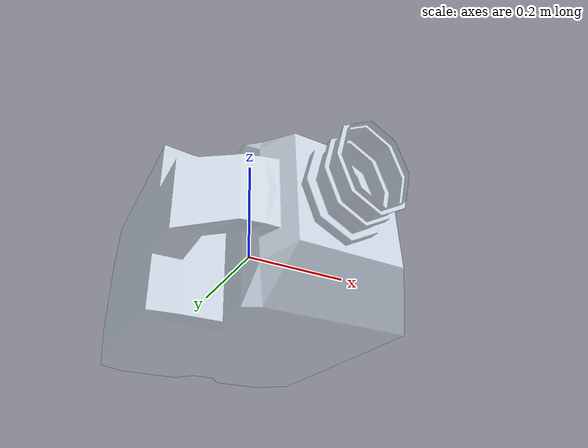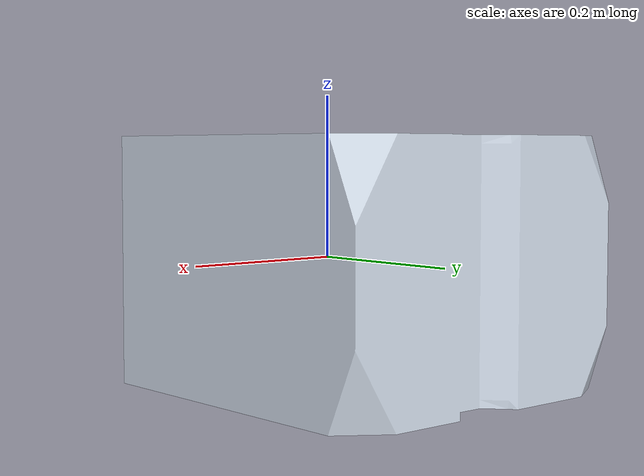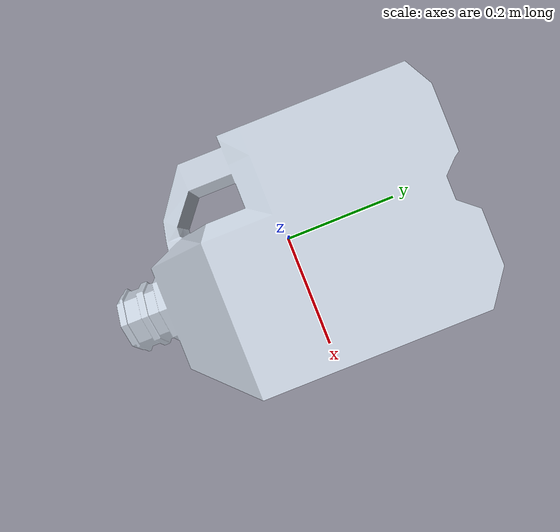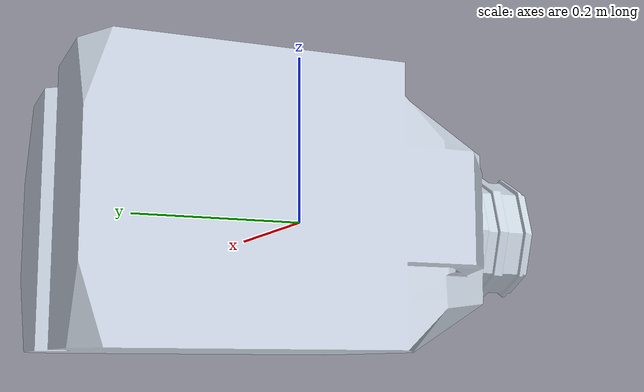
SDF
<?xml version="1.0" ?>
<sdf version="1.7">
  <model name="plastic_container">
    <!-- Static model, can be affected by physics -->
    <static>false</static>
    <allow_auto_disable>false</allow_auto_disable>

    <link name="link">
    <pose>0 0 0.0 3.14 3.14 0.0</pose> <!-- Center at half height -->
      <gravity>true</gravity> <!-- Gravity enabled - buoyancy plugin counteracts it when submerged -->
      <inertial>
        <mass>0.5</mass>
        <inertia>
          <ixx>0.5</ixx> <ixy>0</ixy> <ixz>0</ixz>
          <iyy>0.5</iyy> <iyz>0</iyz>
          <izz>0.01</izz>
        </inertia>
      </inertial>

      <collision name="collision">
        <geometry>
          <mesh>
            <uri>model://plastic_container/plastic_container.dae</uri>
            <scale>2 2 2</scale> <!-- Scale factor for collision mesh -->
          </mesh>
        </geometry>
        <surface>
          <friction>
            <ode>
              <mu>0.6</mu>
              <mu2>0.6</mu2>
            </ode>
          </friction>
        </surface>
      </collision>

      <visual name="visual">
        <geometry>
          <mesh>
            <uri>model://plastic_container/plastic_container.dae</uri>
            <scale>2 2 2</scale> <!-- Scale factor for collision mesh -->
          </mesh>
        </geometry>
        <material>
          <script>
            <name>PlasticContainer</name>
            <uri>model://plastic_container/materials/scripts/plastic_container.material</uri>
          </script>
          <ambient>0.8 0.9 1.0 1.0</ambient>  <!-- Light blue-white ambient -->
          <diffuse>0.9 0.95 1.0 0.8</diffuse>  <!-- Semi-transparent plastic -->
          <specular>0.2 0.2 0.2 1.0</specular>  <!-- Subtle shine -->
          <emissive>0.0 0.0 0.0 1.0</emissive>
        </material>
      </visual>

      <!-- Add velocity decay for more realistic floating behavior -->
      <velocity_decay>
        <linear>0.05</linear>
        <angular>0.05</angular>
      </velocity_decay>
    </link>

    <!-- VRX Buoyancy Plugin -->
    <plugin name="vrx::PolyhedraBuoyancyDrag"
            filename="libPolyhedraBuoyancyDrag.so">
      <!-- Fluid properties -->
      <fluid_density>1025.0</fluid_density>  <!-- Seawater density kg/m³ -->
      <fluid_level>0.0</fluid_level>          <!-- Water surface level -->

      <!-- Drag coefficients -->
      <linear_drag>15.0</linear_drag>         <!-- Slightly higher drag for container shape -->
      <angular_drag>10.2</angular_drag>        <!-- Angular drag coefficient -->

      <!-- Buoyancy object definition -->
      <buoyancy name="container_buoyancy">
        <link_name>link</link_name>
    <pose>0 0 0.0 3.14 3.14 0.0</pose> <!-- Center at half height -->
            <!-- Relative to link origin -->
        <geometry>
          <!-- Approximate container as box for buoyancy calculations -->
          <box>
            <size>0.12 0.08 0.15</size>       <!-- Approximate plastic container dimensions -->
          </box>
        </geometry>
      </buoyancy>

      <!-- Wave field integration -->
      <wavefield>
        <topic>/vrx/wavefield/parameters</topic>
      </wavefield>
    </plugin>

  </model>
</sdf>
